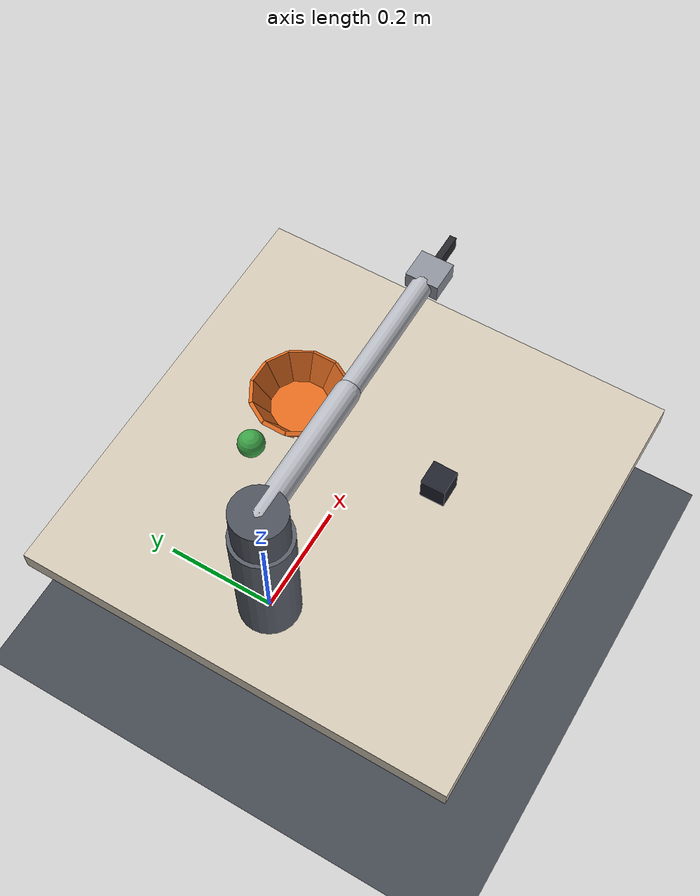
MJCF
<mujoco model="cube_to_bowl">
  <compiler angle="radian" autolimits="true"/>
  <option timestep="0.002" integrator="implicitfast" cone="elliptic" impratio="10"/>

  <visual>
    <headlight ambient="0.35 0.35 0.35" diffuse="0.5 0.5 0.5" specular="0.1 0.1 0.1"/>
    <map znear="0.02" zfar="6"/>
    <quality shadowsize="2048"/>
  </visual>

  <default>
    <geom solref="0.03 1"/>
    <default class="link">
      <geom type="capsule" size="0.022" rgba="0.72 0.73 0.76 1" density="700"
            condim="3" friction="0.7 0.01 0.0001"/>
      <joint type="hinge" axis="0 -1 0" damping="3" armature="0.02"/>
    </default>
    <default class="pad">
      <!-- High friction and a soft, slow contact: a rigid high-gain pinch on a rigid
           cube jitters, and the jitter is what launches the cube out of the gripper. -->
      <geom type="box" rgba="0.15 0.15 0.17 1" density="1200" condim="4"
            friction="1.6 0.02 0.001" solimp="0.95 0.99 0.001" solref="0.006 1"/>
    </default>
    <default class="wall">
      <geom type="box" rgba="0.89 0.42 0.12 1" condim="3" friction="0.6 0.01 0.0001"/>
    </default>
  </default>

  <asset>
    <texture name="grid" type="2d" builtin="checker" rgb1="0.24 0.26 0.29"
             rgb2="0.29 0.31 0.34" width="300" height="300"/>
    <material name="grid" texture="grid" texrepeat="6 6" reflectance="0.05"/>
    <material name="table" rgba="0.82 0.78 0.71 1" reflectance="0.02"/>
  </asset>

  <worldbody>
    <light name="key" pos="0.4 0.3 1.6" dir="-0.2 -0.2 -1" directional="true"
           diffuse="0.6 0.6 0.6" specular="0.15 0.15 0.15"/>
    <light name="fill" pos="0.2 -0.6 1.1" dir="0 0.5 -1" directional="true"
           diffuse="0.25 0.25 0.27"/>

    <geom name="floor" type="plane" size="3 3 0.05" pos="0 0 -0.4" material="grid"/>
    <geom name="table" type="box" size="0.42 0.42 0.02" pos="0.28 0 -0.02"
          material="table" condim="3" friction="0.8 0.01 0.0001"/>

    <camera name="front" pos="0.90 0.0 0.50" xyaxes="0 1 0  -0.613 0 0.790"/>
    <camera name="overhead" pos="0.32 0.0 0.78" xyaxes="0 -1 0  1 0 0"/>

    <!-- ── arm ───────────────────────────────────────────────────────────────── -->
    <body name="pedestal" pos="0 0 0">
      <geom name="pedestal" type="cylinder" size="0.055 0.13" pos="0 0 0.13"
            rgba="0.34 0.36 0.40 1"/>
      <body name="yaw_link" pos="0 0 0.28">
        <joint name="base_yaw" type="hinge" axis="0 0 1" range="-1.2 1.2"
               damping="4" armature="0.03"/>
        <geom name="yaw_link" type="cylinder" size="0.048 0.04" pos="0 0 0.02"
              rgba="0.30 0.32 0.36 1" density="700"/>
        <body name="upper_arm" pos="0 0 0.04">
          <joint name="shoulder" class="link" range="-1.6 1.6"/>
          <geom name="upper_arm" class="link" fromto="0 0 0  0.26 0 0"/>
          <body name="forearm" pos="0.26 0 0">
            <joint name="elbow" class="link" range="-2.6 2.6"/>
            <geom name="forearm" class="link" fromto="0 0 0  0.24 0 0" size="0.019"/>
            <body name="wrist" pos="0.24 0 0">
              <joint name="wrist" class="link" range="-2.4 2.4" damping="1.5"
                     armature="0.01"/>
              <geom name="palm" type="box" size="0.028 0.030 0.016" pos="0.028 0 0"
                    rgba="0.55 0.57 0.61 1" density="900" condim="3"/>
              <camera name="wrist" pos="-0.02 0 0.05" xyaxes="0 -1 0  0.94 0 0.34"/>
              <body name="finger_left" pos="0.056 0 0">
                <joint name="finger_left" type="slide" axis="0 1 0" range="0 0.05"
                       damping="8" armature="0.005"/>
                <geom name="finger_left" class="pad"
                      size="0.027 0.006 0.013" pos="0.027 0 0"/>
              </body>
              <body name="finger_right" pos="0.056 0 0">
                <joint name="finger_right" type="slide" axis="0 -1 0" range="0 0.05"
                       damping="8" armature="0.005"/>
                <geom name="finger_right" class="pad"
                      size="0.027 0.006 0.013" pos="0.027 0 0"/>
              </body>
            </body>
          </body>
        </body>
      </body>
    </body>

    <!-- ── task objects ──────────────────────────────────────────────────────── -->
    <body name="cube" pos="0.34 -0.14 0.024">
      <freejoint name="cube"/>
      <geom name="cube" type="box" size="0.024 0.024 0.024" rgba="0.13 0.14 0.18 1"
            density="520" condim="4" friction="1.0 0.01 0.0001"
            solimp="0.95 0.99 0.001"/>
    </body>

    <!-- Distractor. Present in the real demonstrations and never part of the task;
         it is here so a policy or a scorer that confuses "an object moved" with
         "the task progressed" is caught. -->
    <body name="ball" pos="0.24 0.19 0.026">
      <freejoint name="ball"/>
      <geom name="ball" type="sphere" size="0.026" rgba="0.24 0.64 0.28 1"
            density="380" condim="4" friction="0.9 0.01 0.0001"/>
    </body>

    <body name="bowl" pos="0.36 0.16 0">
      <geom name="bowl_base" type="cylinder" size="0.060 0.004" pos="0 0 0.004"
            rgba="0.89 0.42 0.12 1" condim="3" friction="0.7 0.01 0.0001"/>
      <geom name="bowl_w0" class="wall" size="0.004 0.023 0.03"
            pos="0.07300 0.00000 0.03400" quat="0.965967 0.000000 0.258664 0.000000"/>
      <geom name="bowl_w1" class="wall" size="0.004 0.023 0.03"
            pos="0.06322 0.03650 0.03400" quat="0.933053 -0.066947 0.249851 0.250011"/>
      <geom name="bowl_w2" class="wall" size="0.004 0.023 0.03"
            pos="0.03650 0.06322 0.03400" quat="0.836552 -0.129332 0.224010 0.482984"/>
      <geom name="bowl_w3" class="wall" size="0.004 0.023 0.03"
            pos="0.00000 0.07300 0.03400" quat="0.683042 -0.182903 0.182903 0.683042"/>
      <geom name="bowl_w4" class="wall" size="0.004 0.023 0.03"
            pos="-0.03650 0.06322 0.03400" quat="0.482984 -0.224010 0.129332 0.836552"/>
      <geom name="bowl_w5" class="wall" size="0.004 0.023 0.03"
            pos="-0.06322 0.03650 0.03400" quat="0.250011 -0.249851 0.066947 0.933053"/>
      <geom name="bowl_w6" class="wall" size="0.004 0.023 0.03"
            pos="-0.07300 0.00000 0.03400" quat="0.000000 -0.258664 0.000000 0.965967"/>
      <geom name="bowl_w7" class="wall" size="0.004 0.023 0.03"
            pos="-0.06322 -0.03650 0.03400" quat="-0.250011 -0.249851 -0.066947 0.933053"/>
      <geom name="bowl_w8" class="wall" size="0.004 0.023 0.03"
            pos="-0.03650 -0.06322 0.03400" quat="-0.482984 -0.224010 -0.129332 0.836552"/>
      <geom name="bowl_w9" class="wall" size="0.004 0.023 0.03"
            pos="-0.00000 -0.07300 0.03400" quat="0.683042 0.182903 0.182903 -0.683042"/>
      <geom name="bowl_w10" class="wall" size="0.004 0.023 0.03"
            pos="0.03650 -0.06322 0.03400" quat="0.836552 0.129332 0.224010 -0.482984"/>
      <geom name="bowl_w11" class="wall" size="0.004 0.023 0.03"
            pos="0.06322 -0.03650 0.03400" quat="0.933053 0.066947 0.249851 -0.250011"/>
    </body>
  </worldbody>

  <contact>
    <exclude body1="finger_left" body2="finger_right"/>
    <exclude body1="pedestal" body2="yaw_link"/>
  </contact>

  <actuator>
    <position name="base_yaw" joint="base_yaw" kp="90" kv="6"
              ctrlrange="-1.2 1.2" forcerange="-40 40"/>
    <position name="shoulder" joint="shoulder" kp="320" kv="26"
              ctrlrange="-1.6 1.6" forcerange="-160 160"/>
    <position name="elbow" joint="elbow" kp="180" kv="14"
              ctrlrange="-2.6 2.6" forcerange="-110 110"/>
    <position name="wrist" joint="wrist" kp="50" kv="4"
              ctrlrange="-2.4 2.4" forcerange="-30 30"/>
    <position name="finger_left" joint="finger_left" kp="220" kv="6"
              ctrlrange="0 0.05" forcerange="-45 45"/>
    <position name="finger_right" joint="finger_right" kp="220" kv="6"
              ctrlrange="0 0.05" forcerange="-45 45"/>
  </actuator>
</mujoco>
